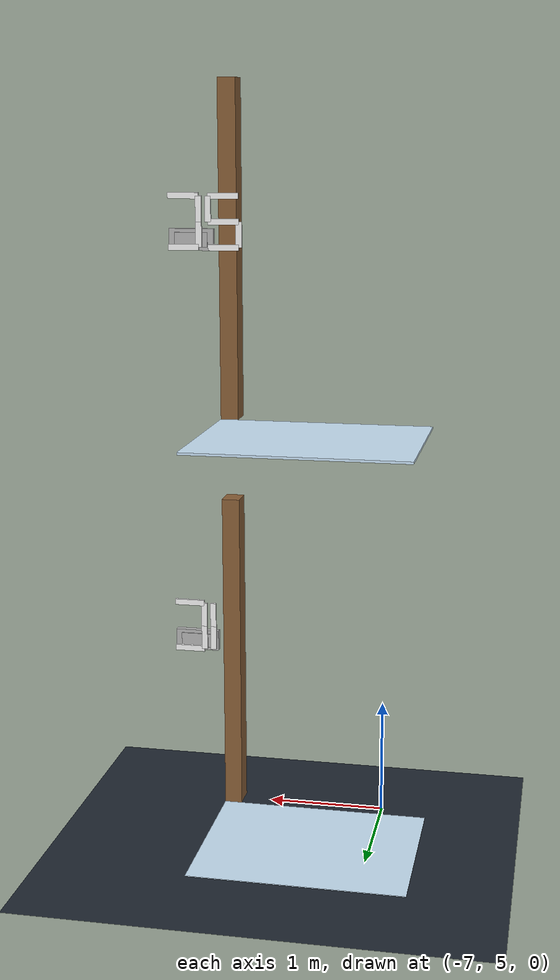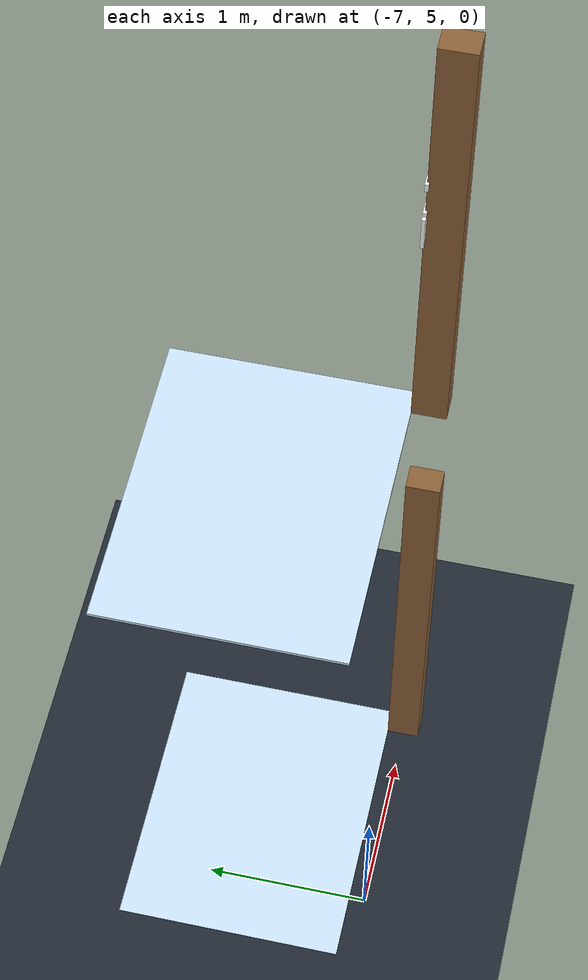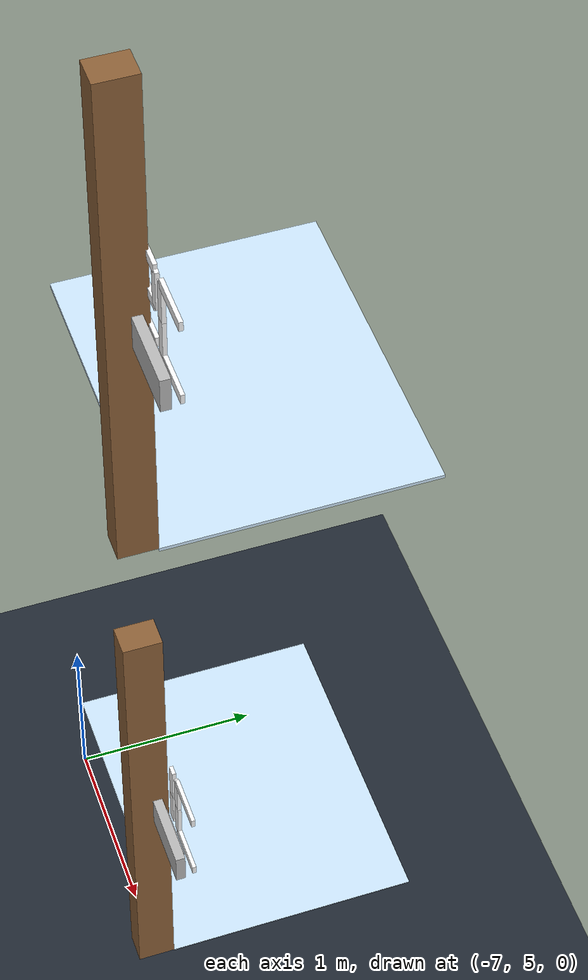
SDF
<sdf version="1.6">
 <world name="hotel_two_floor">
  <model name="ground_plane">
   <static>true</static>
   <link name="link">
    <collision name="col">
     <geometry><plane><normal>0 0 1</normal><size>100 100</size></plane></geometry>
    </collision>
    <visual name="vis">
     <geometry><plane><normal>0 0 1</normal><size>100 100</size></plane></geometry>
     <material><ambient>0.13 0.16 0.20 1</ambient><diffuse>0.13 0.16 0.20 1</diffuse></material>
    </visual>
   </link>
  </model>
  <model name="f1_dp_n1R">
   <static>true</static>
   <pose>-5.6750 5.0000 1.4000 0 0 0</pose>
   <link name="link">
    <collision name="col"><geometry><box><size>0.1500 0.2000 2.8000</size></box></geometry></collision>
    <visual name="vis">
     <geometry><box><size>0.1500 0.2000 2.8000</size></box></geometry>
     <material>
      <ambient>0.55 0.38 0.22 1</ambient>
      <diffuse>0.55 0.38 0.22 1</diffuse>
      <specular>0.20 0.20 0.20 1</specular>
     </material>
    </visual>
   </link>
  </model>
  <model name="f1_sign_n1">
   <static>true</static>
   <pose>-5.3500 5.0250 1.5000 0 0 0</pose>
   <link name="link">
    <collision name="col"><geometry><box><size>0.3800 0.0500 0.1800</size></box></geometry></collision>
    <visual name="vis">
     <geometry><box><size>0.3800 0.0500 0.1800</size></box></geometry>
     <material>
      <material>
       <ambient>0.11 0.43 0.82 1</ambient>
       <diffuse>0.11 0.43 0.82 1</diffuse>
       <specular>0.10 0.10 0.10 1</specular>
      </material>
     </material>
    </visual>
   </link>
  </model>
  <model name="f1_lbl_n1">
   <static>true</static>
   <pose>-5.3500 5.0550 1.5000 0 0 0</pose>
   <link name="link">
    <visual name="vis">
     <geometry><box><size>0.2800 0.0100 0.1200</size></box></geometry>
     <material>
      <material>
       <ambient>0.97 0.97 0.97 1</ambient>
       <diffuse>0.97 0.97 0.97 1</diffuse>
       <specular>0.10 0.10 0.10 1</specular>
      </material>
     </material>
    </visual>
   </link>
  </model>
  <model name="f1_pad_n_1">
   <static>true</static>
   <pose>-6.5000 5.8000 -0.0100 0 0 0</pose>
   <link name="link">
    <visual name="vis">
     <geometry><box><size>1.8000 1.4000 0.0200</size></box></geometry>
     <material>
      <ambient>0.80 0.90 0.98 1</ambient>
      <diffuse>0.80 0.90 0.98 1</diffuse>
      <specular>0.10 0.10 0.10 1</specular>
     </material>
    </visual>
   </link>
  </model>
  <model name="f1_room_n_106_0_b">
   <static>true</static>
   <pose>-5.5100 5.1000 1.7550 0 0 0</pose>
   <link name="link">
    <visual name="vis">
     <geometry><box><size>0.0500 0.0200 0.2100</size></box></geometry>
     <material>
      <ambient>0.98 0.98 0.98 1</ambient>
      <diffuse>0.98 0.98 0.98 1</diffuse>
      <specular>0.20 0.20 0.20 1</specular>
     </material>
    </visual>
   </link>
  </model>
  <model name="f1_room_n_106_0_c">
   <static>true</static>
   <pose>-5.5100 5.1000 1.5450 0 0 0</pose>
   <link name="link">
    <visual name="vis">
     <geometry><box><size>0.0500 0.0200 0.2100</size></box></geometry>
     <material>
      <ambient>0.98 0.98 0.98 1</ambient>
      <diffuse>0.98 0.98 0.98 1</diffuse>
      <specular>0.20 0.20 0.20 1</specular>
     </material>
    </visual>
   </link>
  </model>
  <model name="f1_room_n_106_1_a">
   <static>true</static>
   <pose>-5.3000 5.1000 1.8600 0 0 0</pose>
   <link name="link">
    <visual name="vis">
     <geometry><box><size>0.2600 0.0200 0.0500</size></box></geometry>
     <material>
      <ambient>0.98 0.98 0.98 1</ambient>
      <diffuse>0.98 0.98 0.98 1</diffuse>
      <specular>0.20 0.20 0.20 1</specular>
     </material>
    </visual>
   </link>
  </model>
  <model name="f1_room_n_106_1_f">
   <static>true</static>
   <pose>-5.4300 5.1000 1.7550 0 0 0</pose>
   <link name="link">
    <visual name="vis">
     <geometry><box><size>0.0500 0.0200 0.2100</size></box></geometry>
     <material>
      <ambient>0.98 0.98 0.98 1</ambient>
      <diffuse>0.98 0.98 0.98 1</diffuse>
      <specular>0.20 0.20 0.20 1</specular>
     </material>
    </visual>
   </link>
  </model>
  <model name="f1_room_n_106_1_e">
   <static>true</static>
   <pose>-5.4300 5.1000 1.5450 0 0 0</pose>
   <link name="link">
    <visual name="vis">
     <geometry><box><size>0.0500 0.0200 0.2100</size></box></geometry>
     <material>
      <ambient>0.98 0.98 0.98 1</ambient>
      <diffuse>0.98 0.98 0.98 1</diffuse>
      <specular>0.20 0.20 0.20 1</specular>
     </material>
    </visual>
   </link>
  </model>
  <model name="f1_room_n_106_1_d">
   <static>true</static>
   <pose>-5.3000 5.1000 1.4400 0 0 0</pose>
   <link name="link">
    <visual name="vis">
     <geometry><box><size>0.2600 0.0200 0.0500</size></box></geometry>
     <material>
      <ambient>0.98 0.98 0.98 1</ambient>
      <diffuse>0.98 0.98 0.98 1</diffuse>
      <specular>0.20 0.20 0.20 1</specular>
     </material>
    </visual>
   </link>
  </model>
  <model name="f2_dp_n1R">
   <static>true</static>
   <pose>-5.6750 5.0000 4.9000 0 0 0</pose>
   <link name="link">
    <collision name="col"><geometry><box><size>0.1500 0.2000 2.8000</size></box></geometry></collision>
    <visual name="vis">
     <geometry><box><size>0.1500 0.2000 2.8000</size></box></geometry>
     <material>
      <ambient>0.55 0.38 0.22 1</ambient>
      <diffuse>0.55 0.38 0.22 1</diffuse>
      <specular>0.20 0.20 0.20 1</specular>
     </material>
    </visual>
   </link>
  </model>
  <model name="f2_sign_n1">
   <static>true</static>
   <pose>-5.3500 5.0250 5.0000 0 0 0</pose>
   <link name="link">
    <collision name="col"><geometry><box><size>0.3800 0.0500 0.1800</size></box></geometry></collision>
    <visual name="vis">
     <geometry><box><size>0.3800 0.0500 0.1800</size></box></geometry>
     <material>
      <material>
       <ambient>0.11 0.43 0.82 1</ambient>
       <diffuse>0.11 0.43 0.82 1</diffuse>
       <specular>0.10 0.10 0.10 1</specular>
      </material>
     </material>
    </visual>
   </link>
  </model>
  <model name="f2_lbl_n1">
   <static>true</static>
   <pose>-5.3500 5.0550 5.0000 0 0 0</pose>
   <link name="link">
    <visual name="vis">
     <geometry><box><size>0.2800 0.0100 0.1200</size></box></geometry>
     <material>
      <material>
       <ambient>0.97 0.97 0.97 1</ambient>
       <diffuse>0.97 0.97 0.97 1</diffuse>
       <specular>0.10 0.10 0.10 1</specular>
      </material>
     </material>
    </visual>
   </link>
  </model>
  <model name="f2_pad_n_1">
   <static>true</static>
   <pose>-6.5000 5.8000 3.4900 0 0 0</pose>
   <link name="link">
    <visual name="vis">
     <geometry><box><size>1.8000 1.4000 0.0200</size></box></geometry>
     <material>
      <ambient>0.80 0.90 0.98 1</ambient>
      <diffuse>0.80 0.90 0.98 1</diffuse>
      <specular>0.10 0.10 0.10 1</specular>
     </material>
    </visual>
   </link>
  </model>
  <model name="f2_room_n_206_0_a">
   <static>true</static>
   <pose>-5.6400 5.1000 5.3600 0 0 0</pose>
   <link name="link">
    <visual name="vis">
     <geometry><box><size>0.2600 0.0200 0.0500</size></box></geometry>
     <material>
      <ambient>0.98 0.98 0.98 1</ambient>
      <diffuse>0.98 0.98 0.98 1</diffuse>
      <specular>0.20 0.20 0.20 1</specular>
     </material>
    </visual>
   </link>
  </model>
  <model name="f2_room_n_206_0_b">
   <static>true</static>
   <pose>-5.5100 5.1000 5.2550 0 0 0</pose>
   <link name="link">
    <visual name="vis">
     <geometry><box><size>0.0500 0.0200 0.2100</size></box></geometry>
     <material>
      <ambient>0.98 0.98 0.98 1</ambient>
      <diffuse>0.98 0.98 0.98 1</diffuse>
      <specular>0.20 0.20 0.20 1</specular>
     </material>
    </visual>
   </link>
  </model>
  <model name="f2_room_n_206_0_g">
   <static>true</static>
   <pose>-5.6400 5.1000 5.1500 0 0 0</pose>
   <link name="link">
    <visual name="vis">
     <geometry><box><size>0.2600 0.0200 0.0500</size></box></geometry>
     <material>
      <ambient>0.98 0.98 0.98 1</ambient>
      <diffuse>0.98 0.98 0.98 1</diffuse>
      <specular>0.20 0.20 0.20 1</specular>
     </material>
    </visual>
   </link>
  </model>
  <model name="f2_room_n_206_0_e">
   <static>true</static>
   <pose>-5.7700 5.1000 5.0450 0 0 0</pose>
   <link name="link">
    <visual name="vis">
     <geometry><box><size>0.0500 0.0200 0.2100</size></box></geometry>
     <material>
      <ambient>0.98 0.98 0.98 1</ambient>
      <diffuse>0.98 0.98 0.98 1</diffuse>
      <specular>0.20 0.20 0.20 1</specular>
     </material>
    </visual>
   </link>
  </model>
  <model name="f2_room_n_206_0_d">
   <static>true</static>
   <pose>-5.6400 5.1000 4.9400 0 0 0</pose>
   <link name="link">
    <visual name="vis">
     <geometry><box><size>0.2600 0.0200 0.0500</size></box></geometry>
     <material>
      <ambient>0.98 0.98 0.98 1</ambient>
      <diffuse>0.98 0.98 0.98 1</diffuse>
      <specular>0.20 0.20 0.20 1</specular>
     </material>
    </visual>
   </link>
  </model>
  <model name="f2_room_n_206_1_a">
   <static>true</static>
   <pose>-5.3000 5.1000 5.3600 0 0 0</pose>
   <link name="link">
    <visual name="vis">
     <geometry><box><size>0.2600 0.0200 0.0500</size></box></geometry>
     <material>
      <ambient>0.98 0.98 0.98 1</ambient>
      <diffuse>0.98 0.98 0.98 1</diffuse>
      <specular>0.20 0.20 0.20 1</specular>
     </material>
    </visual>
   </link>
  </model>
  <model name="f2_room_n_206_1_f">
   <static>true</static>
   <pose>-5.4300 5.1000 5.2550 0 0 0</pose>
   <link name="link">
    <visual name="vis">
     <geometry><box><size>0.0500 0.0200 0.2100</size></box></geometry>
     <material>
      <ambient>0.98 0.98 0.98 1</ambient>
      <diffuse>0.98 0.98 0.98 1</diffuse>
      <specular>0.20 0.20 0.20 1</specular>
     </material>
    </visual>
   </link>
  </model>
  <model name="f2_room_n_206_1_e">
   <static>true</static>
   <pose>-5.4300 5.1000 5.0450 0 0 0</pose>
   <link name="link">
    <visual name="vis">
     <geometry><box><size>0.0500 0.0200 0.2100</size></box></geometry>
     <material>
      <ambient>0.98 0.98 0.98 1</ambient>
      <diffuse>0.98 0.98 0.98 1</diffuse>
      <specular>0.20 0.20 0.20 1</specular>
     </material>
    </visual>
   </link>
  </model>
  <model name="f2_room_n_206_1_d">
   <static>true</static>
   <pose>-5.3000 5.1000 4.9400 0 0 0</pose>
   <link name="link">
    <visual name="vis">
     <geometry><box><size>0.2600 0.0200 0.0500</size></box></geometry>
     <material>
      <ambient>0.98 0.98 0.98 1</ambient>
      <diffuse>0.98 0.98 0.98 1</diffuse>
      <specular>0.20 0.20 0.20 1</specular>
     </material>
    </visual>
   </link>
  </model>
 </world>
</sdf>
